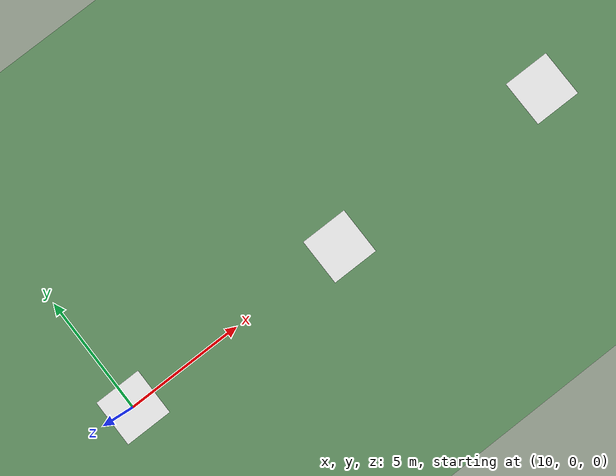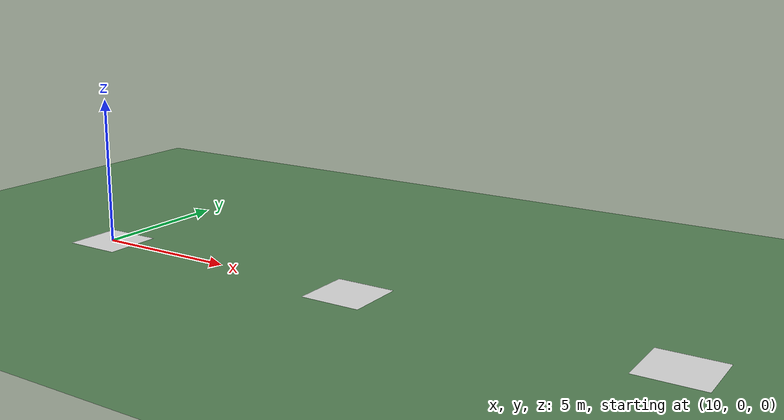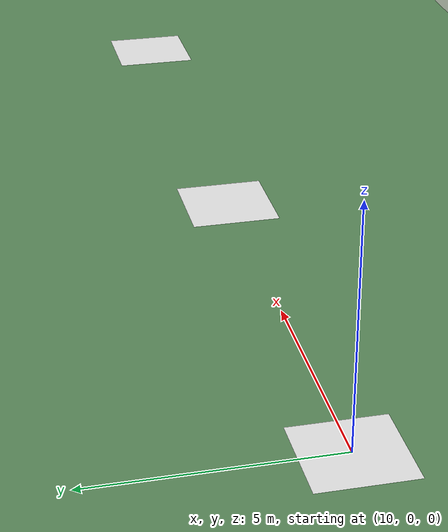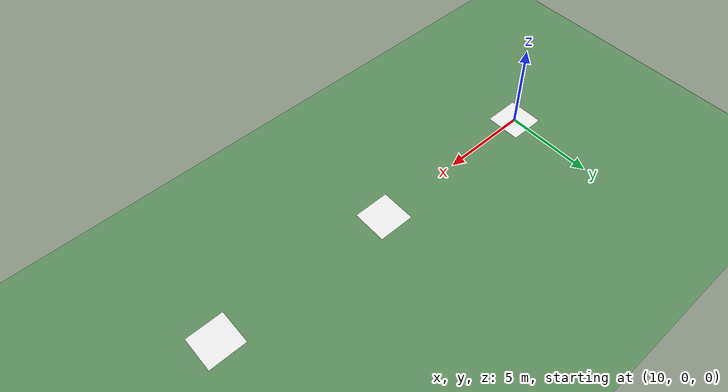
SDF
<?xml version="1.0" ?>
<sdf version="1.9">
  <world name="aruco_landing">
    <physics name="1ms" type="ignore">
      <max_step_size>0.001</max_step_size>
      <real_time_factor>1.0</real_time_factor>
    </physics>
    <plugin filename="gz-sim-physics-system"           name="gz::sim::systems::Physics"/>
    <plugin filename="gz-sim-user-commands-system"     name="gz::sim::systems::UserCommands"/>
    <plugin filename="gz-sim-scene-broadcaster-system" name="gz::sim::systems::SceneBroadcaster"/>
    <plugin filename="gz-sim-sensors-system"           name="gz::sim::systems::Sensors">
      <render_engine>ogre</render_engine>
    </plugin>
    <plugin filename="gz-sim-imu-system"               name="gz::sim::systems::Imu"/>
    <plugin filename="gz-sim-air-pressure-system"      name="gz::sim::systems::AirPressure"/>
    <plugin filename="gz-sim-magnetometer-system"      name="gz::sim::systems::Magnetometer"/>
    <!-- ****** ADDED: without this, sensor_gps never publishes ****** -->
    <plugin filename="gz-sim-navsat-system"            name="gz::sim::systems::NavSat"/>

    <magnetic_field>5.565e-06 2.2868e-05 -4.2689e-05</magnetic_field>

    <spherical_coordinates>
      <surface_model>EARTH_WGS84</surface_model>
      <world_frame_orientation>ENU</world_frame_orientation>
      <latitude_deg>47.397742</latitude_deg>
      <longitude_deg>8.545594</longitude_deg>
      <elevation>488.0</elevation>
    </spherical_coordinates>

    <light type="directional" name="sun">
      <cast_shadows>true</cast_shadows>
      <pose>0 0 10 0 0 0</pose>
      <diffuse>0.8 0.8 0.8 1</diffuse>
      <specular>0.2 0.2 0.2 1</specular>
      <direction>-0.5 0.1 -0.9</direction>
    </light>
    <model name="ground_plane">
      <static>true</static>
      <link name="link">
        <collision name="collision">
          <geometry><plane><normal>0 0 1</normal><size>200 200</size></plane></geometry>
        </collision>
        <visual name="visual">
          <geometry><plane><normal>0 0 1</normal><size>200 200</size></plane></geometry>
          <material><ambient>0.4 0.6 0.4 1</ambient><diffuse>0.4 0.6 0.4 1</diffuse></material>
        </visual>
      </link>
    </model>
    <!-- ArUco pad at Point B (10m north) -->
    <model name="aruco_pad_B">
      <static>true</static>
      <pose>10 0 0.001 0 0 0</pose>
      <link name="link">
        <visual name="visual">
          <geometry><box><size>2.0 2.0 0.001</size></box></geometry>
          <material>
            <diffuse>1 1 1 1</diffuse>
            <pbr><metal><albedo_map>model://aruco_17/materials/textures/aruco_17.png</albedo_map></metal></pbr>
          </material>
        </visual>
        <collision name="collision">
          <geometry><box><size>2.0 2.0 0.001</size></box></geometry>
        </collision>
      </link>
    </model>
    <!-- ArUco pad at Point C (20m north) -->
    <model name="aruco_pad_C">
      <static>true</static>
      <pose>20 0 0.001 0 0 0</pose>
      <link name="link">
        <visual name="visual">
          <geometry><box><size>2.0 2.0 0.001</size></box></geometry>
          <material>
            <diffuse>1 1 1 1</diffuse>
            <pbr><metal><albedo_map>model://aruco_17/materials/textures/aruco_17.png</albedo_map></metal></pbr>
          </material>
        </visual>
        <collision name="collision">
          <geometry><box><size>2.0 2.0 0.001</size></box></geometry>
        </collision>
      </link>
    </model>
    <!-- ArUco pad at Point D (30m north) -->
    <model name="aruco_pad_D">
      <static>true</static>
      <pose>30 0 0.001 0 0 0</pose>
      <link name="link">
        <visual name="visual">
          <geometry><box><size>2.0 2.0 0.001</size></box></geometry>
          <material>
            <diffuse>1 1 1 1</diffuse>
            <pbr><metal><albedo_map>model://aruco_17/materials/textures/aruco_17.png</albedo_map></metal></pbr>
          </material>
        </visual>
        <collision name="collision">
          <geometry><box><size>2.0 2.0 0.001</size></box></geometry>
        </collision>
      </link>
    </model>
  </world>
</sdf>
